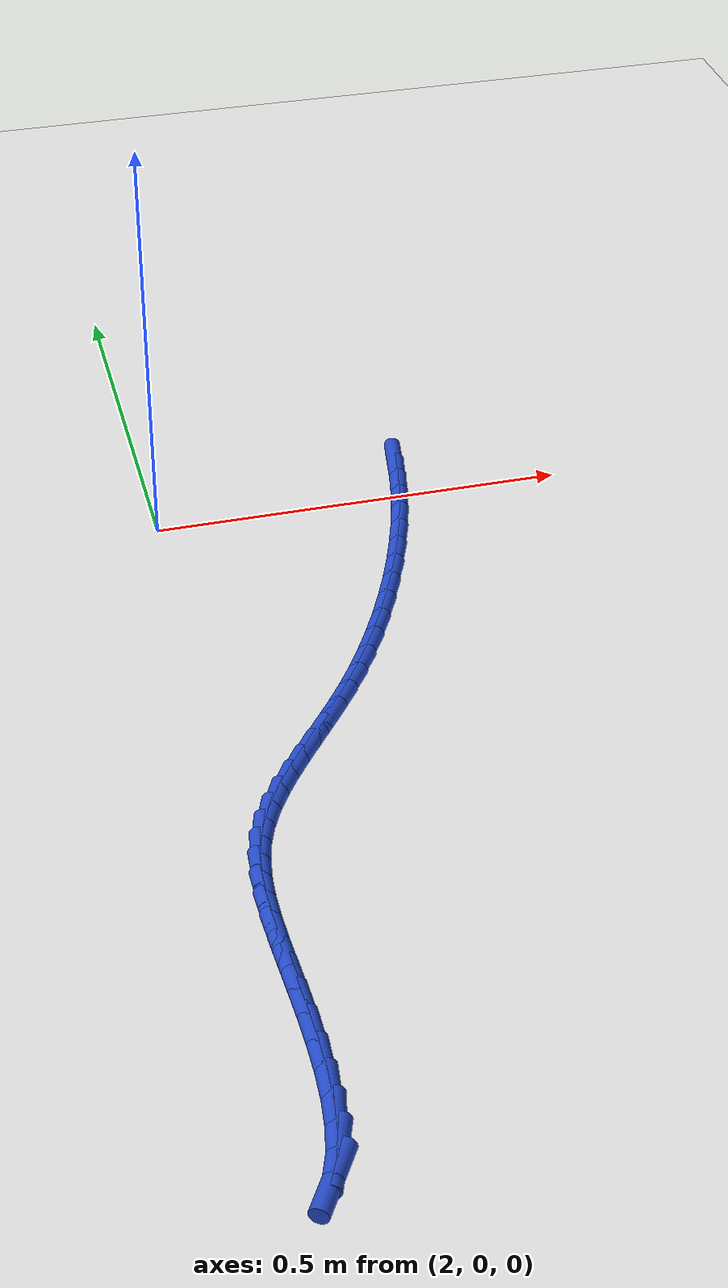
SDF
<sdf version="1.6">
 <world name="default">
  <model name="ground_plane">
   <static>1</static>
   <link name="link">
    <collision name="collision">
     <geometry><plane><normal>0 0 1</normal><size>100 100</size></plane></geometry>
     <surface><friction><ode><mu>100</mu><mu2>50</mu2></ode></friction></surface>
    </collision>
    <visual name="visual">
     <cast_shadows>0</cast_shadows>
     <geometry><plane><normal>0 0 1</normal><size>100 100</size></plane></geometry>
     <material>
      <script><uri>file://media/materials/scripts/gazebo.material</uri><name>Gazebo/WhiteGlow</name></script>
     </material>
    </visual>
   </link>
  </model>
  <model name="line">
   <link name="link_150">
    <pose>2.3124458509766663 0.06017364253557804 0.01 0 1.57 1.40485978230931</pose>
    <collision name="collision">
     <geometry><cylinder><radius>0.01</radius><length>0.08</length></cylinder></geometry>
    </collision>
    <visual name="visual">
     <material>
      <script><name>Gazebo/Blue</name><uri>file://media/materials/scripts/gazebo.material</uri></script>
     </material>
     <geometry><cylinder><radius>0.01</radius><length>0.08</length></cylinder></geometry>
    </visual>
   </link>
   <link name="link_151">
    <pose>2.306850733640241 0.026765274875963106 0.01 0 1.57 1.364364783835523</pose>
    <collision name="collision">
     <geometry><cylinder><radius>0.01</radius><length>0.08</length></cylinder></geometry>
    </collision>
    <visual name="visual">
     <material>
      <script><name>Gazebo/Blue</name><uri>file://media/materials/scripts/gazebo.material</uri></script>
     </material>
     <geometry><cylinder><radius>0.01</radius><length>0.08</length></cylinder></geometry>
    </visual>
   </link>
   <link name="link_152">
    <pose>2.299768712725599 -0.007052891450336163 0.01 0 1.57 1.3264987755777626</pose>
    <collision name="collision">
     <geometry><cylinder><radius>0.01</radius><length>0.08</length></cylinder></geometry>
    </collision>
    <visual name="visual">
     <material>
      <script><name>Gazebo/Blue</name><uri>file://media/materials/scripts/gazebo.material</uri></script>
     </material>
     <geometry><cylinder><radius>0.01</radius><length>0.08</length></cylinder></geometry>
    </visual>
   </link>
   <link name="link_153">
    <pose>2.2912783328710544 -0.041112988734221076 0.01 0 1.57 1.2906672981822287</pose>
    <collision name="collision">
     <geometry><cylinder><radius>0.01</radius><length>0.08</length></cylinder></geometry>
    </collision>
    <visual name="visual">
     <material>
      <script><name>Gazebo/Blue</name><uri>file://media/materials/scripts/gazebo.material</uri></script>
     </material>
     <geometry><cylinder><radius>0.01</radius><length>0.08</length></cylinder></geometry>
    </visual>
   </link>
   <link name="link_154">
    <pose>2.2814581387149278 -0.07524714926658974 0.01 0 1.57 1.2563426314702353</pose>
    <collision name="collision">
     <geometry><cylinder><radius>0.01</radius><length>0.08</length></cylinder></geometry>
    </collision>
    <visual name="visual">
     <material>
      <script><name>Gazebo/Blue</name><uri>file://media/materials/scripts/gazebo.material</uri></script>
     </material>
     <geometry><cylinder><radius>0.01</radius><length>0.08</length></cylinder></geometry>
    </visual>
   </link>
   <link name="link_155">
    <pose>2.2703866748955344 -0.10928750533834135 0.01 0 1.57 1.2230446218499833</pose>
    <collision name="collision">
     <geometry><cylinder><radius>0.01</radius><length>0.08</length></cylinder></geometry>
    </collision>
    <visual name="visual">
     <material>
      <script><name>Gazebo/Blue</name><uri>file://media/materials/scripts/gazebo.material</uri></script>
     </material>
     <geometry><cylinder><radius>0.01</radius><length>0.08</length></cylinder></geometry>
    </visual>
   </link>
   <link name="link_156">
    <pose>2.2581424860511916 -0.14306618924037506 0.01 0 1.57 1.1903232544579891</pose>
    <collision name="collision">
     <geometry><cylinder><radius>0.01</radius><length>0.08</length></cylinder></geometry>
    </collision>
    <visual name="visual">
     <material>
      <script><name>Gazebo/Blue</name><uri>file://media/materials/scripts/gazebo.material</uri></script>
     </material>
     <geometry><cylinder><radius>0.01</radius><length>0.08</length></cylinder></geometry>
    </visual>
   </link>
   <link name="link_157">
    <pose>2.2448041168202164 -0.17641533326358994 0.01 0 1.57 1.1577422970120743</pose>
    <collision name="collision">
     <geometry><cylinder><radius>0.01</radius><length>0.08</length></cylinder></geometry>
    </collision>
    <visual name="visual">
     <material>
      <script><name>Gazebo/Blue</name><uri>file://media/materials/scripts/gazebo.material</uri></script>
     </material>
     <geometry><cylinder><radius>0.01</radius><length>0.08</length></cylinder></geometry>
    </visual>
   </link>
   <link name="link_158">
    <pose>2.230450111840926 -0.20916706969888527 0.01 0 1.57 1.124863212939272</pose>
    <collision name="collision">
     <geometry><cylinder><radius>0.01</radius><length>0.08</length></cylinder></geometry>
    </collision>
    <visual name="visual">
     <material>
      <script><name>Gazebo/Blue</name><uri>file://media/materials/scripts/gazebo.material</uri></script>
     </material>
     <geometry><cylinder><radius>0.01</radius><length>0.08</length></cylinder></geometry>
    </visual>
   </link>
   <link name="link_159">
    <pose>2.2151590157516377 -0.24115353083716023 0.01 0 1.57 1.0912284396888456</pose>
    <collision name="collision">
     <geometry><cylinder><radius>0.01</radius><length>0.08</length></cylinder></geometry>
    </collision>
    <visual name="visual">
     <material>
      <script><name>Gazebo/Blue</name><uri>file://media/materials/scripts/gazebo.material</uri></script>
     </material>
     <geometry><cylinder><radius>0.01</radius><length>0.08</length></cylinder></geometry>
    </visual>
   </link>
   <link name="link_160">
    <pose>2.199009373190668 -0.27220684896931396 0.01 0 1.57 1.0563430063951074</pose>
    <collision name="collision">
     <geometry><cylinder><radius>0.01</radius><length>0.08</length></cylinder></geometry>
    </collision>
    <visual name="visual">
     <material>
      <script><name>Gazebo/Blue</name><uri>file://media/materials/scripts/gazebo.material</uri></script>
     </material>
     <geometry><cylinder><radius>0.01</radius><length>0.08</length></cylinder></geometry>
    </visual>
   </link>
   <link name="link_161">
    <pose>2.1820797287963343 -0.3021591563862456 0.01 0 1.57 1.019653300214824</pose>
    <collision name="collision">
     <geometry><cylinder><radius>0.01</radius><length>0.08</length></cylinder></geometry>
    </collision>
    <visual name="visual">
     <material>
      <script><name>Gazebo/Blue</name><uri>file://media/materials/scripts/gazebo.material</uri></script>
     </material>
     <geometry><cylinder><radius>0.01</radius><length>0.08</length></cylinder></geometry>
    </visual>
   </link>
   <link name="link_162">
    <pose>2.1644486272069536 -0.33084258537885436 0.01 0 1.57 0.9806399336487749</pose>
    <collision name="collision">
     <geometry><cylinder><radius>0.01</radius><length>0.08</length></cylinder></geometry>
    </collision>
    <visual name="visual">
     <material>
      <script><name>Gazebo/Blue</name><uri>file://media/materials/scripts/gazebo.material</uri></script>
     </material>
     <geometry><cylinder><radius>0.01</radius><length>0.08</length></cylinder></geometry>
    </visual>
   </link>
   <link name="link_163">
    <pose>2.14619692167876 -0.3580927963094176 0.01 0 1.57 0.9446050635403299</pose>
    <collision name="collision">
     <geometry><cylinder><radius>0.01</radius><length>0.08</length></cylinder></geometry>
    </collision>
    <visual name="visual">
     <material>
      <script><name>Gazebo/Blue</name><uri>file://media/materials/scripts/gazebo.material</uri></script>
     </material>
     <geometry><cylinder><radius>0.01</radius><length>0.08</length></cylinder></geometry>
    </visual>
   </link>
   <link name="link_164">
    <pose>2.1275180163937746 -0.38391745188708676 0.01 0 1.57 0.9205238139544383</pose>
    <collision name="collision">
     <geometry><cylinder><radius>0.01</radius><length>0.08</length></cylinder></geometry>
    </collision>
    <visual name="visual">
     <material>
      <script><name>Gazebo/Blue</name><uri>file://media/materials/scripts/gazebo.material</uri></script>
     </material>
     <geometry><cylinder><radius>0.01</radius><length>0.08</length></cylinder></geometry>
    </visual>
   </link>
   <link name="link_165">
    <pose>2.108766281470719 -0.4085702058573969 0.01 0 1.57 0.9102012379511406</pose>
    <collision name="collision">
     <geometry><cylinder><radius>0.01</radius><length>0.08</length></cylinder></geometry>
    </collision>
    <visual name="visual">
     <material>
      <script><name>Gazebo/Blue</name><uri>file://media/materials/scripts/gazebo.material</uri></script>
     </material>
     <geometry><cylinder><radius>0.01</radius><length>0.08</length></cylinder></geometry>
    </visual>
   </link>
   <link name="link_166">
    <pose>2.09030846889799 -0.4323236341615706 0.01 0 1.57 0.9149000996414272</pose>
    <collision name="collision">
     <geometry><cylinder><radius>0.01</radius><length>0.08</length></cylinder></geometry>
    </collision>
    <visual name="visual">
     <material>
      <script><name>Gazebo/Blue</name><uri>file://media/materials/scripts/gazebo.material</uri></script>
     </material>
     <geometry><cylinder><radius>0.01</radius><length>0.08</length></cylinder></geometry>
    </visual>
   </link>
   <link name="link_167">
    <pose>2.072511330663986 -0.4554503127408307 0.01 0 1.57 0.9360550658016502</pose>
    <collision name="collision">
     <geometry><cylinder><radius>0.01</radius><length>0.08</length></cylinder></geometry>
    </collision>
    <visual name="visual">
     <material>
      <script><name>Gazebo/Blue</name><uri>file://media/materials/scripts/gazebo.material</uri></script>
     </material>
     <geometry><cylinder><radius>0.01</radius><length>0.08</length></cylinder></geometry>
    </visual>
   </link>
   <link name="link_168">
    <pose>2.055741618757102 -0.4782228175363994 0.01 0 1.57 0.9752573518727933</pose>
    <collision name="collision">
     <geometry><cylinder><radius>0.01</radius><length>0.08</length></cylinder></geometry>
    </collision>
    <visual name="visual">
     <material>
      <script><name>Gazebo/Blue</name><uri>file://media/materials/scripts/gazebo.material</uri></script>
     </material>
     <geometry><cylinder><radius>0.01</radius><length>0.08</length></cylinder></geometry>
    </visual>
   </link>
   <link name="link_169">
    <pose>2.0403660851657346 -0.5009137244894986 0.01 0 1.57 1.0340652270981348</pose>
    <collision name="collision">
     <geometry><cylinder><radius>0.01</radius><length>0.08</length></cylinder></geometry>
    </collision>
    <visual name="visual">
     <material>
      <script><name>Gazebo/Blue</name><uri>file://media/materials/scripts/gazebo.material</uri></script>
     </material>
     <geometry><cylinder><radius>0.01</radius><length>0.08</length></cylinder></geometry>
    </visual>
   </link>
   <link name="link_170">
    <pose>2.0267514818782812 -0.5237956095413526 0.01 0 1.57 1.1135358973289182</pose>
    <collision name="collision">
     <geometry><cylinder><radius>0.01</radius><length>0.08</length></cylinder></geometry>
    </collision>
    <visual name="visual">
     <material>
      <script><name>Gazebo/Blue</name><uri>file://media/materials/scripts/gazebo.material</uri></script>
     </material>
     <geometry><cylinder><radius>0.01</radius><length>0.08</length></cylinder></geometry>
    </visual>
   </link>
   <link name="link_171">
    <pose>2.0152645608831374 -0.547141048633183 0.01 0 1.57 1.213412375602033</pose>
    <collision name="collision">
     <geometry><cylinder><radius>0.01</radius><length>0.08</length></cylinder></geometry>
    </collision>
    <visual name="visual">
     <material>
      <script><name>Gazebo/Blue</name><uri>file://media/materials/scripts/gazebo.material</uri></script>
     </material>
     <geometry><cylinder><radius>0.01</radius><length>0.08</length></cylinder></geometry>
    </visual>
   </link>
   <link name="link_172">
    <pose>2.0062720459204204 -0.5712226103202589 0.01 0 1.57 1.32484311117664</pose>
    <collision name="collision">
     <geometry><cylinder><radius>0.01</radius><length>0.08</length></cylinder></geometry>
    </collision>
    <visual name="visual">
     <material>
      <script><name>Gazebo/Blue</name><uri>file://media/materials/scripts/gazebo.material</uri></script>
     </material>
     <geometry><cylinder><radius>0.01</radius><length>0.08</length></cylinder></geometry>
    </visual>
   </link>
   <link name="link_173">
    <pose>1.9999837927436668 -0.5962718475753223 0.01 0 1.57 1.4225746075958663</pose>
    <collision name="collision">
     <geometry><cylinder><radius>0.01</radius><length>0.08</length></cylinder></geometry>
    </collision>
    <visual name="visual">
     <material>
      <script><name>Gazebo/Blue</name><uri>file://media/materials/scripts/gazebo.material</uri></script>
     </material>
     <geometry><cylinder><radius>0.01</radius><length>0.08</length></cylinder></geometry>
    </visual>
   </link>
   <link name="link_174">
    <pose>1.9960849412407773 -0.6223831182214905 0.01 0 1.57 1.499918054610207</pose>
    <collision name="collision">
     <geometry><cylinder><radius>0.01</radius><length>0.08</length></cylinder></geometry>
    </collision>
    <visual name="visual">
     <material>
      <script><name>Gazebo/Blue</name><uri>file://media/materials/scripts/gazebo.material</uri></script>
     </material>
     <geometry><cylinder><radius>0.01</radius><length>0.08</length></cylinder></geometry>
    </visual>
   </link>
   <link name="link_175">
    <pose>1.9941510477710989 -0.6496221277586313 0.01 0 1.57 1.556961644061744</pose>
    <collision name="collision">
     <geometry><cylinder><radius>0.01</radius><length>0.08</length></cylinder></geometry>
    </collision>
    <visual name="visual">
     <material>
      <script><name>Gazebo/Blue</name><uri>file://media/materials/scripts/gazebo.material</uri></script>
     </material>
     <geometry><cylinder><radius>0.01</radius><length>0.08</length></cylinder></geometry>
    </visual>
   </link>
   <link name="link_176">
    <pose>1.9937576686939786 -0.6780545816866116 0.01 0 1.57 -1.5464611977601277</pose>
    <collision name="collision">
     <geometry><cylinder><radius>0.01</radius><length>0.08</length></cylinder></geometry>
    </collision>
    <visual name="visual">
     <material>
      <script><name>Gazebo/Blue</name><uri>file://media/materials/scripts/gazebo.material</uri></script>
     </material>
     <geometry><cylinder><radius>0.01</radius><length>0.08</length></cylinder></geometry>
    </visual>
   </link>
   <link name="link_177">
    <pose>1.9944803603687646 -0.7077461855053002 0.01 0 1.57 -1.5252289153444545</pose>
    <collision name="collision">
     <geometry><cylinder><radius>0.01</radius><length>0.08</length></cylinder></geometry>
    </collision>
    <visual name="visual">
     <material>
      <script><name>Gazebo/Blue</name><uri>file://media/materials/scripts/gazebo.material</uri></script>
     </material>
     <geometry><cylinder><radius>0.01</radius><length>0.08</length></cylinder></geometry>
    </visual>
   </link>
   <link name="link_178">
    <pose>1.9958946791548033 -0.7387626447145642 0.01 0 1.57 -1.5189558311195657</pose>
    <collision name="collision">
     <geometry><cylinder><radius>0.01</radius><length>0.08</length></cylinder></geometry>
    </collision>
    <visual name="visual">
     <material>
      <script><name>Gazebo/Blue</name><uri>file://media/materials/scripts/gazebo.material</uri></script>
     </material>
     <geometry><cylinder><radius>0.01</radius><length>0.08</length></cylinder></geometry>
    </visual>
   </link>
   <link name="link_179">
    <pose>1.9975761790682025 -0.771169613691507 0.01 0 1.57 -1.5258194458887469</pose>
    <collision name="collision">
     <geometry><cylinder><radius>0.01</radius><length>0.08</length></cylinder></geometry>
    </collision>
    <visual name="visual">
     <material>
      <script><name>Gazebo/Blue</name><uri>file://media/materials/scripts/gazebo.material</uri></script>
     </material>
     <geometry><cylinder><radius>0.01</radius><length>0.08</length></cylinder></geometry>
    </visual>
   </link>
   <link name="link_180">
    <pose>1.999092162812696 -0.8048527268428017 0.01 0 1.57 -1.544795630114668</pose>
    <collision name="collision">
     <geometry><cylinder><radius>0.01</radius><length>0.08</length></cylinder></geometry>
    </collision>
    <visual name="visual">
     <material>
      <script><name>Gazebo/Blue</name><uri>file://media/materials/scripts/gazebo.material</uri></script>
     </material>
     <geometry><cylinder><radius>0.01</radius><length>0.08</length></cylinder></geometry>
    </visual>
   </link>
   <link name="link_181">
    <pose>1.9999831779037986 -0.8391138971048177 0.01 0 1.57 1.5649527259718716</pose>
    <collision name="collision">
     <geometry><cylinder><radius>0.01</radius><length>0.08</length></cylinder></geometry>
    </collision>
    <visual name="visual">
     <material>
      <script><name>Gazebo/Blue</name><uri>file://media/materials/scripts/gazebo.material</uri></script>
     </material>
     <geometry><cylinder><radius>0.01</radius><length>0.08</length></cylinder></geometry>
    </visual>
   </link>
   <link name="link_182">
    <pose>1.9997843585862987 -0.8731369353724673 0.01 0 1.57 1.5176590219742174</pose>
    <collision name="collision">
     <geometry><cylinder><radius>0.01</radius><length>0.08</length></cylinder></geometry>
    </collision>
    <visual name="visual">
     <material>
      <script><name>Gazebo/Blue</name><uri>file://media/materials/scripts/gazebo.material</uri></script>
     </material>
     <geometry><cylinder><radius>0.01</radius><length>0.08</length></cylinder></geometry>
    </visual>
   </link>
   <link name="link_183">
    <pose>1.9980308391049844 -0.9061056525406639 0.01 0 1.57 1.4500583908896587</pose>
    <collision name="collision">
     <geometry><cylinder><radius>0.01</radius><length>0.08</length></cylinder></geometry>
    </collision>
    <visual name="visual">
     <material>
      <script><name>Gazebo/Blue</name><uri>file://media/materials/scripts/gazebo.material</uri></script>
     </material>
     <geometry><cylinder><radius>0.01</radius><length>0.08</length></cylinder></geometry>
    </visual>
   </link>
   <link name="link_184">
    <pose>1.9942577537046446 -0.9372038595043194 0.01 0 1.57 1.3540115195792735</pose>
    <collision name="collision">
     <geometry><cylinder><radius>0.01</radius><length>0.08</length></cylinder></geometry>
    </collision>
    <visual name="visual">
     <material>
      <script><name>Gazebo/Blue</name><uri>file://media/materials/scripts/gazebo.material</uri></script>
     </material>
     <geometry><cylinder><radius>0.01</radius><length>0.08</length></cylinder></geometry>
    </visual>
   </link>
   <link name="link_185">
    <pose>1.9880002366300678 -0.965615367158349 0.01 0 1.57 1.2167474889932461</pose>
    <collision name="collision">
     <geometry><cylinder><radius>0.01</radius><length>0.08</length></cylinder></geometry>
    </collision>
    <visual name="visual">
     <material>
      <script><name>Gazebo/Blue</name><uri>file://media/materials/scripts/gazebo.material</uri></script>
     </material>
     <geometry><cylinder><radius>0.01</radius><length>0.08</length></cylinder></geometry>
    </visual>
   </link>
   <link name="link_186">
    <pose>1.9787934221260421 -0.9905239863976638 0.01 0 1.57 1.0208873223335517</pose>
    <collision name="collision">
     <geometry><cylinder><radius>0.01</radius><length>0.08</length></cylinder></geometry>
    </collision>
    <visual name="visual">
     <material>
      <script><name>Gazebo/Blue</name><uri>file://media/materials/scripts/gazebo.material</uri></script>
     </material>
     <geometry><cylinder><radius>0.01</radius><length>0.08</length></cylinder></geometry>
    </visual>
   </link>
  </model>
 </world>
</sdf>
